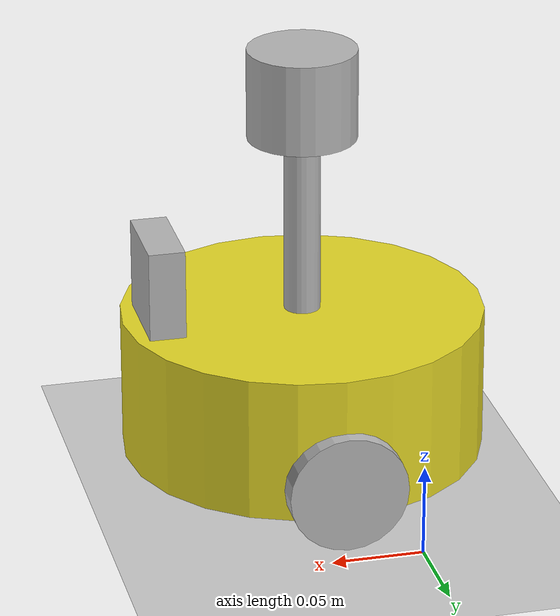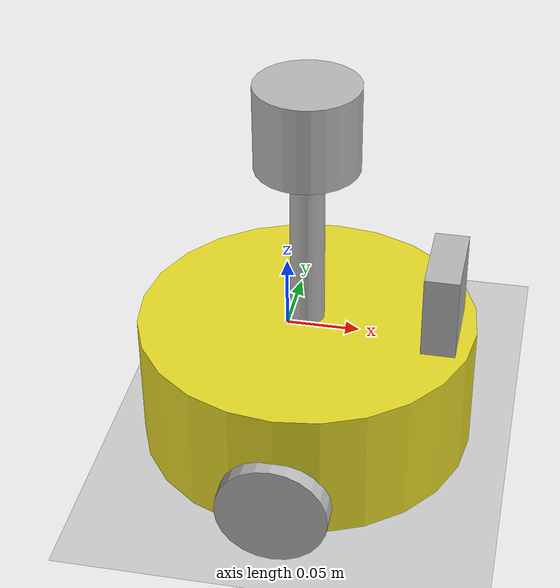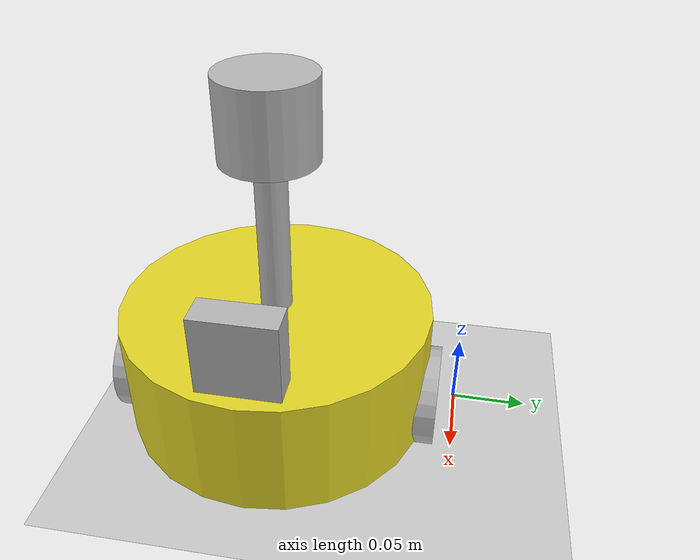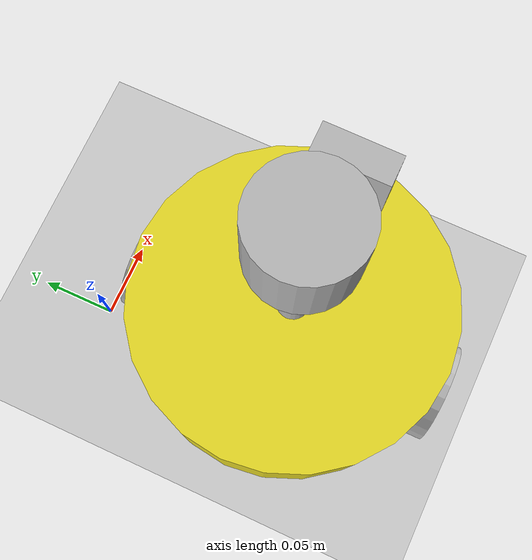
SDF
<sdf version="1.7">
 <world name="default">
  <light name="sun" type="directional">
   <pose>0 0 10 0 -0 0</pose>
   <diffuse>0.8 0.8 0.8 1</diffuse>
   <specular>0.2 0.2 0.2 1</specular>
   <attenuation>
    <range>1000</range>
    <constant>0.9</constant>
    <linear>0.01</linear>
    <quadratic>0.001</quadratic>
   </attenuation>
   <direction>-0.5 0.1 -0.9</direction>
   <spot><inner_angle>0</inner_angle><outer_angle>0</outer_angle><falloff>0</falloff></spot>
  </light>
  <model name="ground_plane">
   <static>1</static>
   <link name="link">
    <collision name="collision">
     <geometry><plane><normal>0 0 1</normal><size>100 100</size></plane></geometry>
     <surface>
      <contact><collide_bitmask>65535</collide_bitmask></contact>
      <friction><ode><mu>100</mu><mu2>50</mu2></ode></friction>
     </surface>
    </collision>
    <visual name="visual">
     <cast_shadows>0</cast_shadows>
     <geometry><plane><normal>0 0 1</normal><size>100 100</size></plane></geometry>
     <material>
      <script><uri>file://media/materials/scripts/gazebo.material</uri><name>Gazebo/Grey</name></script>
     </material>
    </visual>
   </link>
  </model>
  <gravity>0 0 -9.8</gravity>
  <magnetic_field>6e-06 2.3e-05 -4.2e-05</magnetic_field>
  <atmosphere type="adiabatic"/>
  <physics type="ode">
   <max_step_size>0.001</max_step_size>
   <real_time_factor>1</real_time_factor>
   <real_time_update_rate>1000</real_time_update_rate>
  </physics>
  <scene><ambient>0.4 0.4 0.4 1</ambient><background>0.7 0.7 0.7 1</background><shadows>1</shadows></scene>
  <spherical_coordinates>
   <surface_model>EARTH_WGS84</surface_model>
   <latitude_deg>0</latitude_deg>
   <longitude_deg>0</longitude_deg>
   <elevation>0</elevation>
   <heading_deg>0</heading_deg>
  </spherical_coordinates>
  <model name="mycarbot">
   <link name="base_footprint">
    <inertial>
     <pose>0 0 0.055 0 -0 0</pose>
     <mass>2</mass>
     <inertia>
      <ixx>0.00606667</ixx>
      <ixy>0</ixy>
      <ixz>0</ixz>
      <iyy>0.00606667</iyy>
      <iyz>0</iyz>
      <izz>0.01</izz>
     </inertia>
    </inertial>
    <collision name="base_footprint_fixed_joint_lump__base_link_collision">
     <pose>0 0 0.055 0 -0 0</pose>
     <geometry><cylinder><length>0.08</length><radius>0.1</radius></cylinder></geometry>
    </collision>
    <visual name="base_footprint_visual"><geometry><sphere><radius>0.001</radius></sphere></geometry></visual>
    <visual name="base_footprint_fixed_joint_lump__base_link_visual_1">
     <pose>0 0 0.055 0 -0 0</pose>
     <geometry><cylinder><length>0.08</length><radius>0.1</radius></cylinder></geometry>
     <material>
      <script><name>Gazebo/Yellow</name><uri>file://media/materials/scripts/gazebo.material</uri></script>
     </material>
    </visual>
    <visual name="base_footprint_fixed_joint_lump__bracket_visual_2">
     <pose>0 0 0.12 0 -0 0</pose>
     <geometry><cylinder><length>0.15</length><radius>0.01</radius></cylinder></geometry>
    </visual>
    <visual name="base_footprint_fixed_joint_lump__lidar_visual_3">
     <pose>0 0 0.22 0 -0 0</pose>
     <geometry><cylinder><length>0.05</length><radius>0.03</radius></cylinder></geometry>
    </visual>
    <visual name="base_footprint_fixed_joint_lump__camera_visual_4">
     <pose>0.08 0 0.12 0 -0 0</pose>
     <geometry><box><size>0.02 0.05 0.05</size></box></geometry>
    </visual>
   </link>
   <joint name="back2link" type="revolute">
    <pose relative_to="base_footprint">-0.08 0 0.0075 0 -0 0</pose>
    <parent>base_footprint</parent>
    <child>back_wheel</child>
    <axis>
     <xyz>0 1 0</xyz>
     <limit><lower>-1e+16</lower><upper>1e+16</upper></limit>
     <dynamics><spring_reference>0</spring_reference><spring_stiffness>0</spring_stiffness></dynamics>
    </axis>
   </joint>
   <link name="back_wheel">
    <pose relative_to="back2link">0 0 0 0 -0 0</pose>
    <inertial>
     <mass>0.01</mass>
     <inertia>
      <ixx>2.25e-07</ixx>
      <ixy>0</ixy>
      <ixz>0</ixz>
      <iyy>2.25e-07</iyy>
      <iyz>0</iyz>
      <izz>2.25e-07</izz>
     </inertia>
    </inertial>
    <collision name="back_wheel_collision">
     <geometry><sphere><radius>0.0075</radius></sphere></geometry>
    </collision>
    <visual name="back_wheel_visual"><geometry><sphere><radius>0.0075</radius></sphere></geometry></visual>
   </link>
   <joint name="front2link" type="revolute">
    <pose relative_to="base_footprint">0.08 0 0.0075 0 -0 0</pose>
    <parent>base_footprint</parent>
    <child>front_wheel</child>
    <axis>
     <xyz>0 1 0</xyz>
     <limit><lower>-1e+16</lower><upper>1e+16</upper></limit>
     <dynamics><spring_reference>0</spring_reference><spring_stiffness>0</spring_stiffness></dynamics>
    </axis>
   </joint>
   <link name="front_wheel">
    <pose relative_to="front2link">0 0 0 0 -0 0</pose>
    <inertial>
     <mass>0.01</mass>
     <inertia>
      <ixx>2.25e-07</ixx>
      <ixy>0</ixy>
      <ixz>0</ixz>
      <iyy>2.25e-07</iyy>
      <iyz>0</iyz>
      <izz>2.25e-07</izz>
     </inertia>
    </inertial>
    <collision name="front_wheel_collision">
     <geometry><sphere><radius>0.0075</radius></sphere></geometry>
    </collision>
    <visual name="front_wheel_visual"><geometry><sphere><radius>0.0075</radius></sphere></geometry></visual>
   </link>
   <joint name="left2link" type="revolute">
    <pose relative_to="base_footprint">0 0.1 0.0325 0 -0 0</pose>
    <parent>base_footprint</parent>
    <child>left_wheel</child>
    <axis>
     <xyz>0 1 0</xyz>
     <limit><lower>-1e+16</lower><upper>1e+16</upper></limit>
     <dynamics><spring_reference>0</spring_reference><spring_stiffness>0</spring_stiffness></dynamics>
    </axis>
   </joint>
   <link name="left_wheel">
    <pose relative_to="left2link">0 0 0 0 -0 0</pose>
    <inertial>
     <mass>0.05</mass>
     <inertia>
      <ixx>1.41406e-05</ixx>
      <ixy>0</ixy>
      <ixz>0</ixz>
      <iyy>1.41406e-05</iyy>
      <iyz>0</iyz>
      <izz>2.64063e-05</izz>
     </inertia>
    </inertial>
    <collision name="left_wheel_collision">
     <pose>0 0 0 1.5708 -0 0</pose>
     <geometry><cylinder><length>0.015</length><radius>0.0325</radius></cylinder></geometry>
    </collision>
    <visual name="left_wheel_visual">
     <pose>0 0 0 1.5708 -0 0</pose>
     <geometry><cylinder><length>0.015</length><radius>0.0325</radius></cylinder></geometry>
    </visual>
   </link>
   <joint name="right2link" type="revolute">
    <pose relative_to="base_footprint">0 -0.1 0.0325 0 -0 0</pose>
    <parent>base_footprint</parent>
    <child>right_wheel</child>
    <axis>
     <xyz>0 1 0</xyz>
     <limit><lower>-1e+16</lower><upper>1e+16</upper></limit>
     <dynamics><spring_reference>0</spring_reference><spring_stiffness>0</spring_stiffness></dynamics>
    </axis>
   </joint>
   <link name="right_wheel">
    <pose relative_to="right2link">0 0 0 0 -0 0</pose>
    <inertial>
     <mass>0.05</mass>
     <inertia>
      <ixx>1.41406e-05</ixx>
      <ixy>0</ixy>
      <ixz>0</ixz>
      <iyy>1.41406e-05</iyy>
      <iyz>0</iyz>
      <izz>2.64063e-05</izz>
     </inertia>
    </inertial>
    <collision name="right_wheel_collision">
     <pose>0 0 0 1.5708 -0 0</pose>
     <geometry><cylinder><length>0.015</length><radius>0.0325</radius></cylinder></geometry>
    </collision>
    <visual name="right_wheel_visual">
     <pose>0 0 0 1.5708 -0 0</pose>
     <geometry><cylinder><length>0.015</length><radius>0.0325</radius></cylinder></geometry>
    </visual>
   </link>
   <static>0</static>
   <pose>0.036661 -0.119557 -7e-06 -6.3e-05 1e-06 -0.004449</pose>
  </model>
 </world>
</sdf>
